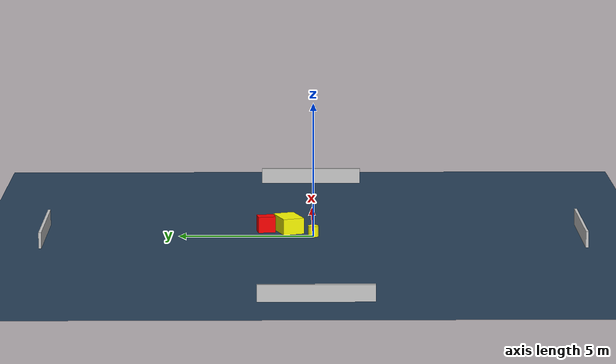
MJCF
<?xml version="1.0" ?>
<mujoco model="generated_environment">
  <option timestep="0.01" integrator="RK4" cone="elliptic"/>
  <default>
    <geom density="1"/>
  </default>
  <asset>
    <texture builtin="gradient" height="3072" name="skybox" rgb1="0.3 0.5 0.7" rgb2="0 0 0" type="skybox" width="512"/>
    <texture builtin="checker" height="300" name="groundplane" rgb1="0.2 0.3 0.4" rgb2="0.1 0.2 0.3" type="2d" width="300"/>
    <material name="groundplane" reflectance="0.2" texrepeat="5 5" texture="groundplane"/>
  </asset>
  <worldbody>
    <light dir="0 0 -1" directional="true" pos="0 0 1.5"/>
    <geom condim="3" friction="0.5 0.005 0.001" material="groundplane" name="floor" pos="0 0 0" size="0 0 0.05" type="plane"/>
    <body name="walls">
      <geom name="wall_1" condim="4" pos="-10.0 0.0 0.3" rgba="0.800000011920929 0.800000011920929 0.800000011920929 1.0" size="0.05 2.0 0.3" type="box"/>
      <geom name="wall_2" condim="4" pos="10.0 0.0 0.3" rgba="0.800000011920929 0.800000011920929 0.800000011920929 1.0" size="0.05 2.0 0.3" type="box"/>
      <geom name="wall_3" condim="4" pos="0.0 -10.0 0.3" rgba="0.800000011920929 0.800000011920929 0.800000011920929 1.0" size="2.0 0.05 0.3" type="box"/>
      <geom name="wall_4" condim="4" pos="0.0 10.0 0.3" rgba="0.800000011920929 0.800000011920929 0.800000011920929 1.0" size="2.0 0.05 0.3" type="box"/>
    </body>
    <body name="robot">
      <joint name="joint_x" type="slide" pos="0 0 0" axis="1 0 0"/>
      <joint name="joint_y" type="slide" pos="0 0 0" axis="0 1 0"/>
      <geom name="robot" type="cylinder" pos="0.0 0.0 0.2" size="0.2 0.2 0.0" mass="5.0" friction="1.0 0.005 0.0001" condim="4" rgba="1.0 1.0 0.0 1.0"/>
    </body>
    <body name="obstacle_1_movable">
      <geom name="obstacle_1_movable" condim="4" pos="0.841867562860895 0.9186091364468754 0.3" euler="0 0 20.02647257190439" friction="0.0 0.005 0.001" rgba="1.0 1.0 0.0 1.0" size="0.5839625619369654 0.40178931984132815 0.3" type="box" mass="0.1"/>
      <joint type="free"/>
    </body>
    <body name="obstacle_2_static">
      <geom name="obstacle_2_static" condim="4" pos="0.8535001330823462 1.765641076758304 0.3" euler="0 0 9.707426360715097" friction="0.0 0.005 0.001" rgba="1.0 0.0 0.0 1.0" size="0.24255706936072347 0.3254698645420888 0.3" type="box"/>
    </body>
  </worldbody>
  <actuator>
    <motor name="actuator_x" joint="joint_x" gear="1" ctrlrange="-1 1"/>
    <motor name="actuator_y" joint="joint_y" gear="1" ctrlrange="-1 1"/>
  </actuator>
</mujoco>
